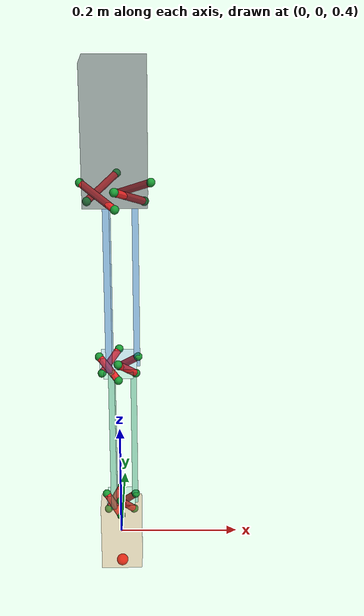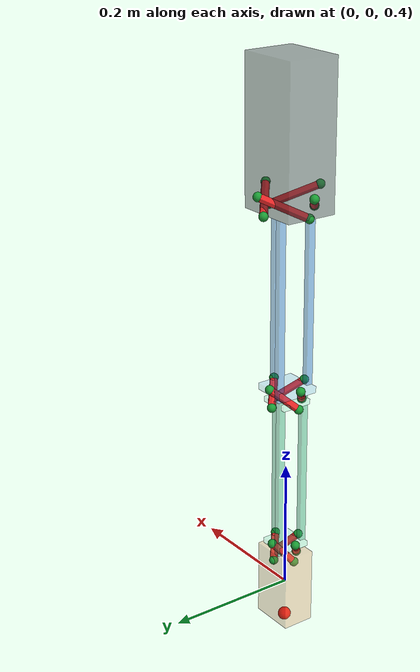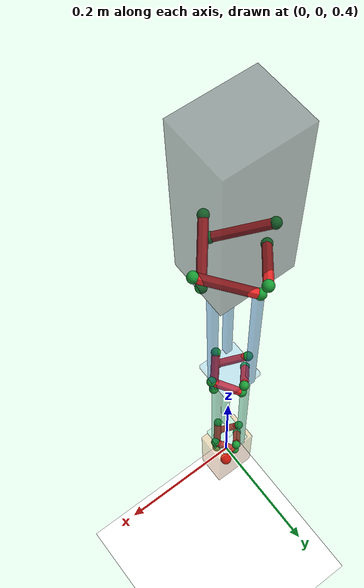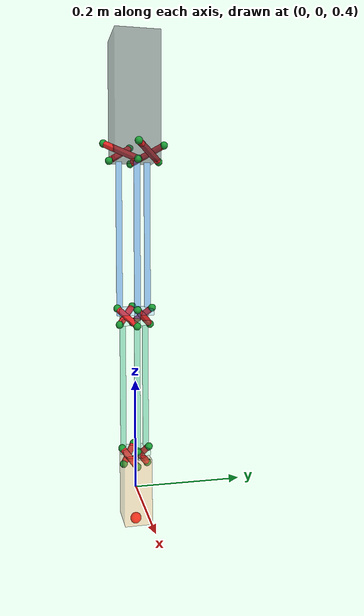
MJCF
<mujoco model="arm_7dof_joint_tensegrity">
  <compiler angle="degree" autolimits="true"/>
  <option timestep="0.002" integrator="RK4" gravity="0 0 -9.81"/>

  <default>
    <joint damping="0.8" armature="0.015"/>
    <geom density="950" friction="0.8 0.05 0.02"/>
    <site size="0.007"/>
    <motor ctrllimited="true" ctrlrange="-1 1"/>
    <tendon width="0.006" rgba="0.95 0.08 0.08 1"/>
  </default>

  <worldbody>
    <geom name="floor" type="plane" size="2 2 0.1" rgba="0.95 0.95 0.95 1"/>

    <body name="torso" pos="0 0 1.0">
      <geom name="torso_geom" type="box" size="0.05 0.04 0.11" pos="0 0 0.11" rgba="0.2 0.2 0.25 0.45"/>

      <!-- Shoulder anchor sites on torso side -->
      <site name="sh_t1" pos="0.055 0.000 0.030" rgba="0.1 0.6 0.2 1"/>
      <site name="sh_t2" pos="-0.055 0.000 0.030" rgba="0.1 0.6 0.2 1"/>
      <site name="sh_t3" pos="0.000 0.055 0.030" rgba="0.1 0.6 0.2 1"/>
      <site name="sh_t4" pos="0.000 -0.055 0.030" rgba="0.1 0.6 0.2 1"/>

      <body name="shoulder_yaw_frame" pos="0 0 0.02">
        <inertial pos="0 0 0" mass="0.01" diaginertia="1e-5 1e-5 1e-5"/>
        <joint name="shoulder_yaw" type="hinge" axis="0 0 1" range="-120 120"/>

        <body name="shoulder_pitch_frame" pos="0 0 0">
          <inertial pos="0 0 0" mass="0.01" diaginertia="1e-5 1e-5 1e-5"/>
          <joint name="shoulder_pitch" type="hinge" axis="0 1 0" range="-90 120"/>

          <body name="shoulder_roll_frame" pos="0 0 0">
            <inertial pos="0 0 0" mass="0.01" diaginertia="1e-5 1e-5 1e-5"/>
            <joint name="shoulder_roll" type="hinge" axis="1 0 0" range="-90 90"/>

            <body name="upper_arm" pos="0 0 0">
              <!-- Upper-arm link as a 3-strut truss (not a single tube). -->
              <geom name="upper_arm_strut_a" type="box" size="0.005 0.005 0.15" pos="0.030 0.000 -0.150" rgba="0.12 0.42 0.82 0.45"/>
              <geom name="upper_arm_strut_b" type="box" size="0.005 0.005 0.15" pos="-0.015 0.026 -0.150" rgba="0.12 0.42 0.82 0.45"/>
              <geom name="upper_arm_strut_c" type="box" size="0.005 0.005 0.15" pos="-0.015 -0.026 -0.150" rgba="0.12 0.42 0.82 0.45"/>
              <geom name="upper_arm_endcap_p" type="box" size="0.030 0.030 0.005" pos="0 0 -0.010" rgba="0.16 0.50 0.90 0.20"/>
              <geom name="upper_arm_endcap_d" type="box" size="0.030 0.030 0.005" pos="0 0 -0.290" rgba="0.16 0.50 0.90 0.20"/>

              <!-- Shoulder anchor sites on upper-arm side -->
              <site name="sh_u1" pos="0.045 0.000 -0.020" rgba="0.1 0.6 0.2 1"/>
              <site name="sh_u2" pos="-0.045 0.000 -0.020" rgba="0.1 0.6 0.2 1"/>
              <site name="sh_u3" pos="0.000 0.045 -0.020" rgba="0.1 0.6 0.2 1"/>
              <site name="sh_u4" pos="0.000 -0.045 -0.020" rgba="0.1 0.6 0.2 1"/>

              <!-- Elbow proximal sites -->
              <site name="el_u1" pos="0.032 0.000 -0.285" rgba="0.1 0.6 0.2 1"/>
              <site name="el_u2" pos="-0.032 0.000 -0.285" rgba="0.1 0.6 0.2 1"/>
              <site name="el_u3" pos="0.000 0.032 -0.285" rgba="0.1 0.6 0.2 1"/>
              <site name="el_u4" pos="0.000 -0.032 -0.285" rgba="0.1 0.6 0.2 1"/>

              <body name="elbow_flex_frame" pos="0 0 -0.30">
                <inertial pos="0 0 0" mass="0.01" diaginertia="1e-5 1e-5 1e-5"/>
                <joint name="elbow_flex" type="hinge" axis="0 1 0" range="0 150"/>

                <body name="forearm_roll_frame" pos="0 0 0">
                  <inertial pos="0 0 0" mass="0.01" diaginertia="1e-5 1e-5 1e-5"/>
                  <joint name="forearm_roll" type="hinge" axis="0 0 1" range="-120 120"/>

                  <body name="lower_arm" pos="0 0 0">
                    <!-- Forearm link as a 3-strut truss. -->
                    <geom name="lower_arm_strut_a" type="box" size="0.0048 0.0048 0.13" pos="0.024 0.000 -0.130" rgba="0.18 0.68 0.48 0.45"/>
                    <geom name="lower_arm_strut_b" type="box" size="0.0048 0.0048 0.13" pos="-0.012 0.021 -0.130" rgba="0.18 0.68 0.48 0.45"/>
                    <geom name="lower_arm_strut_c" type="box" size="0.0048 0.0048 0.13" pos="-0.012 -0.021 -0.130" rgba="0.18 0.68 0.48 0.45"/>
                    <geom name="lower_arm_endcap_p" type="box" size="0.024 0.024 0.004" pos="0 0 -0.010" rgba="0.22 0.78 0.58 0.20"/>
                    <geom name="lower_arm_endcap_d" type="box" size="0.024 0.024 0.004" pos="0 0 -0.250" rgba="0.22 0.78 0.58 0.20"/>

                    <!-- Elbow distal sites -->
                    <site name="el_f1" pos="0.028 0.000 -0.015" rgba="0.1 0.6 0.2 1"/>
                    <site name="el_f2" pos="-0.028 0.000 -0.015" rgba="0.1 0.6 0.2 1"/>
                    <site name="el_f3" pos="0.000 0.028 -0.015" rgba="0.1 0.6 0.2 1"/>
                    <site name="el_f4" pos="0.000 -0.028 -0.015" rgba="0.1 0.6 0.2 1"/>

                    <!-- Wrist proximal sites -->
                    <site name="wr_f1" pos="0.025 0.000 -0.245" rgba="0.1 0.6 0.2 1"/>
                    <site name="wr_f2" pos="-0.025 0.000 -0.245" rgba="0.1 0.6 0.2 1"/>
                    <site name="wr_f3" pos="0.000 0.025 -0.245" rgba="0.1 0.6 0.2 1"/>
                    <site name="wr_f4" pos="0.000 -0.025 -0.245" rgba="0.1 0.6 0.2 1"/>

                    <body name="wrist_pitch_frame" pos="0 0 -0.26">
                      <inertial pos="0 0 0" mass="0.008" diaginertia="8e-6 8e-6 8e-6"/>
                      <joint name="wrist_pitch" type="hinge" axis="0 1 0" range="-80 80"/>

                      <body name="wrist_yaw_frame" pos="0 0 0">
                        <inertial pos="0 0 0" mass="0.008" diaginertia="8e-6 8e-6 8e-6"/>
                        <joint name="wrist_yaw" type="hinge" axis="1 0 0" range="-40 40"/>

                        <body name="hand" pos="0 0 0">
                          <geom name="hand_geom" type="box" size="0.035 0.025 0.06" pos="0 0 -0.06" rgba="0.9 0.6 0.35 0.35"/>

                          <!-- Wrist distal sites -->
                          <site name="wr_h1" pos="0.022 0.000 -0.015" rgba="0.1 0.6 0.2 1"/>
                          <site name="wr_h2" pos="-0.022 0.000 -0.015" rgba="0.1 0.6 0.2 1"/>
                          <site name="wr_h3" pos="0.000 0.022 -0.015" rgba="0.1 0.6 0.2 1"/>
                          <site name="wr_h4" pos="0.000 -0.022 -0.015" rgba="0.1 0.6 0.2 1"/>

                          <site name="ee" pos="0 0 -0.12" size="0.01" rgba="1 0 0 1"/>
                        </body>
                      </body>
                    </body>
                  </body>
                </body>
              </body>
            </body>
          </body>
        </body>
      </body>
    </body>
  </worldbody>

  <tendon>
    <!-- Joint-local tensegrity-style passive networks: shoulder -->
    <spatial name="sh_c1" stiffness="420" damping="7" springlength="0.095" rgba="0.9 0.15 0.15 1"><site site="sh_t1"/><site site="sh_u3"/></spatial>
    <spatial name="sh_c2" stiffness="420" damping="7" springlength="0.095" rgba="0.9 0.15 0.15 1"><site site="sh_t3"/><site site="sh_u2"/></spatial>
    <spatial name="sh_c3" stiffness="420" damping="7" springlength="0.095" rgba="0.9 0.15 0.15 1"><site site="sh_t2"/><site site="sh_u4"/></spatial>
    <spatial name="sh_c4" stiffness="420" damping="7" springlength="0.095" rgba="0.9 0.15 0.15 1"><site site="sh_t4"/><site site="sh_u1"/></spatial>

    <!-- elbow -->
    <spatial name="el_c1" stiffness="360" damping="6" springlength="0.070" rgba="0.9 0.15 0.15 1"><site site="el_u1"/><site site="el_f3"/></spatial>
    <spatial name="el_c2" stiffness="360" damping="6" springlength="0.070" rgba="0.9 0.15 0.15 1"><site site="el_u3"/><site site="el_f2"/></spatial>
    <spatial name="el_c3" stiffness="360" damping="6" springlength="0.070" rgba="0.9 0.15 0.15 1"><site site="el_u2"/><site site="el_f4"/></spatial>
    <spatial name="el_c4" stiffness="360" damping="6" springlength="0.070" rgba="0.9 0.15 0.15 1"><site site="el_u4"/><site site="el_f1"/></spatial>

    <!-- wrist -->
    <spatial name="wr_c1" stiffness="260" damping="4" springlength="0.052" rgba="0.9 0.15 0.15 1"><site site="wr_f1"/><site site="wr_h3"/></spatial>
    <spatial name="wr_c2" stiffness="260" damping="4" springlength="0.052" rgba="0.9 0.15 0.15 1"><site site="wr_f3"/><site site="wr_h2"/></spatial>
    <spatial name="wr_c3" stiffness="260" damping="4" springlength="0.052" rgba="0.9 0.15 0.15 1"><site site="wr_f2"/><site site="wr_h4"/></spatial>
    <spatial name="wr_c4" stiffness="260" damping="4" springlength="0.052" rgba="0.9 0.15 0.15 1"><site site="wr_f4"/><site site="wr_h1"/></spatial>

    <!-- Actuated tendon pairs (proxy for proximal motors + cable transmission) -->
    <fixed name="t_sh_yaw_pos"><joint joint="shoulder_yaw" coef="1"/></fixed>
    <fixed name="t_sh_yaw_neg"><joint joint="shoulder_yaw" coef="-1"/></fixed>

    <fixed name="t_sh_pitch_pos"><joint joint="shoulder_pitch" coef="1"/></fixed>
    <fixed name="t_sh_pitch_neg"><joint joint="shoulder_pitch" coef="-1"/></fixed>

    <fixed name="t_sh_roll_pos"><joint joint="shoulder_roll" coef="1"/></fixed>
    <fixed name="t_sh_roll_neg"><joint joint="shoulder_roll" coef="-1"/></fixed>

    <fixed name="t_elbow_pos"><joint joint="elbow_flex" coef="1"/></fixed>
    <fixed name="t_elbow_neg"><joint joint="elbow_flex" coef="-1"/></fixed>

    <fixed name="t_roll_pos"><joint joint="forearm_roll" coef="1"/></fixed>
    <fixed name="t_roll_neg"><joint joint="forearm_roll" coef="-1"/></fixed>

    <fixed name="t_wr_pitch_pos"><joint joint="wrist_pitch" coef="1"/></fixed>
    <fixed name="t_wr_pitch_neg"><joint joint="wrist_pitch" coef="-1"/></fixed>

    <fixed name="t_wr_yaw_pos"><joint joint="wrist_yaw" coef="1"/></fixed>
    <fixed name="t_wr_yaw_neg"><joint joint="wrist_yaw" coef="-1"/></fixed>
  </tendon>

  <actuator>
    <motor name="a_sh_yaw_pos" tendon="t_sh_yaw_pos" gear="32"/>
    <motor name="a_sh_yaw_neg" tendon="t_sh_yaw_neg" gear="32"/>

    <motor name="a_sh_pitch_pos" tendon="t_sh_pitch_pos" gear="36"/>
    <motor name="a_sh_pitch_neg" tendon="t_sh_pitch_neg" gear="36"/>

    <motor name="a_sh_roll_pos" tendon="t_sh_roll_pos" gear="28"/>
    <motor name="a_sh_roll_neg" tendon="t_sh_roll_neg" gear="28"/>

    <motor name="a_elbow_pos" tendon="t_elbow_pos" gear="38"/>
    <motor name="a_elbow_neg" tendon="t_elbow_neg" gear="38"/>

    <motor name="a_roll_pos" tendon="t_roll_pos" gear="18"/>
    <motor name="a_roll_neg" tendon="t_roll_neg" gear="18"/>

    <motor name="a_wr_pitch_pos" tendon="t_wr_pitch_pos" gear="16"/>
    <motor name="a_wr_pitch_neg" tendon="t_wr_pitch_neg" gear="16"/>

    <motor name="a_wr_yaw_pos" tendon="t_wr_yaw_pos" gear="14"/>
    <motor name="a_wr_yaw_neg" tendon="t_wr_yaw_neg" gear="14"/>
  </actuator>

  <sensor>
    <framepos name="s_ee_pos" objtype="site" objname="ee"/>
  </sensor>

  <keyframe>
    <key name="home" qpos="0 0 0 35 0 0 0" ctrl="0 0 0 0 0 0 0 0 0 0 0 0 0 0"/>
  </keyframe>
</mujoco>
